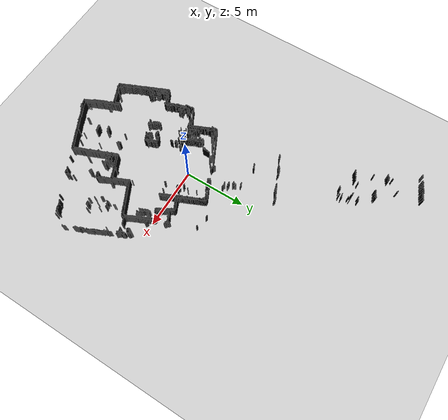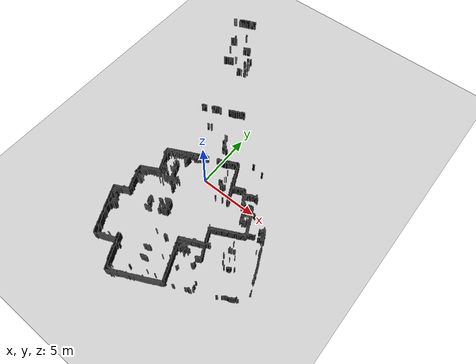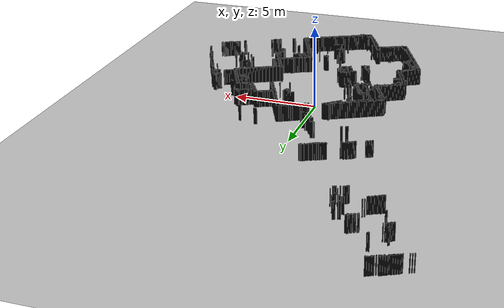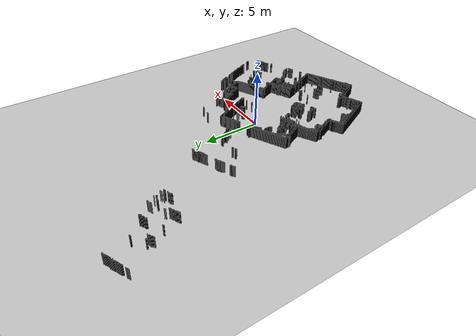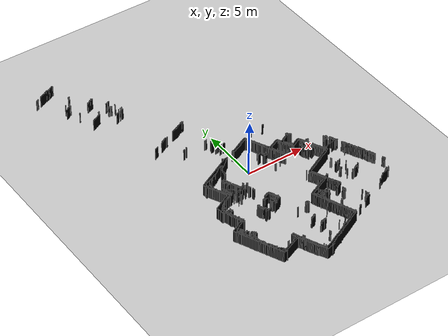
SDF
<?xml version="1.0" ?>
<sdf version="1.5">
  <world name="default">
    <!-- override the default position of the camera -->
    <gui>
      <camera name='gzclient_camera'>
        <pose>-5.73 3.76 8.10 0 1.1316 -0.4398</pose>
      </camera>
    </gui>
    <gravity>0 0 -9.8</gravity>
    <magnetic_field>6e-06 2.3e-05 -4.2e-05</magnetic_field>
    <atmosphere type="adiabatic" />
    <physics default="0" name="default_physics" type="ode">
      <max_step_size>0.001</max_step_size>
      <real_time_factor>1</real_time_factor>
      <real_time_update_rate>1000</real_time_update_rate>
    </physics>
    <scene>
      <ambient>0.4 0.4 0.4 1</ambient>
      <background>0.7 0.7 0.7 1</background>
      <shadows>1</shadows>
      <grid>false</grid>
      <origin_visual>false</origin_visual>
    </scene>
    <spherical_coordinates>
      <surface_model>EARTH_WGS84</surface_model>
      <latitude_deg>0</latitude_deg>
      <longitude_deg>0</longitude_deg>
      <elevation>0</elevation>
      <heading_deg>0</heading_deg>
    </spherical_coordinates>
    <!-- A global light source -->
    <include>
      <uri>model://sun</uri>
    </include>
    <!-- A ground plane -->
    <include>
      <uri>model://ground_plane</uri>
    </include>
    <!-- A ground plane -->
    <include>
      <uri>model://map</uri>
    </include>
  </world>
</sdf>

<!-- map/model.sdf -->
<sdf version="1.4">
  <model name="map">
    <link name="link">
      <inertial>
        <mass>15</mass>
        <inertia>
          <ixx>0.0</ixx>
          <ixy>0.0</ixy>
          <ixz>0.0</ixz>
          <iyy>0.0</iyy>
          <iyz>0.0</iyz>
          <izz>0.0</izz>
        </inertia>
      </inertial>
      <collision name="collision">
        <pose>0 0 0 0 0 0</pose>
        <geometry>
          <mesh>
            <uri>model://map/map.dae</uri>
          </mesh>
        </geometry>
      </collision>
      <visual name="visual">
        <pose>0 0 0 0 0 0</pose>
        <geometry>
          <mesh>
            <uri>model://map/map.dae</uri>
          </mesh>
        </geometry>
      </visual>
    </link>
    <static>1</static>
  </model>
</sdf>
